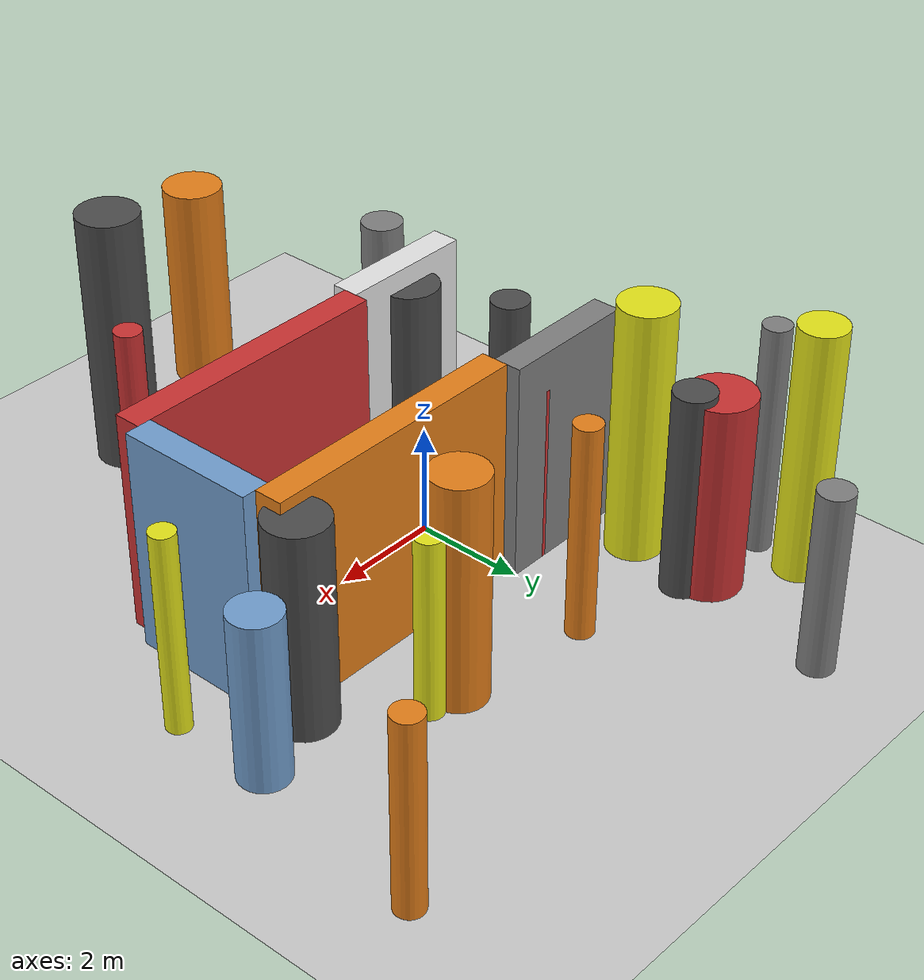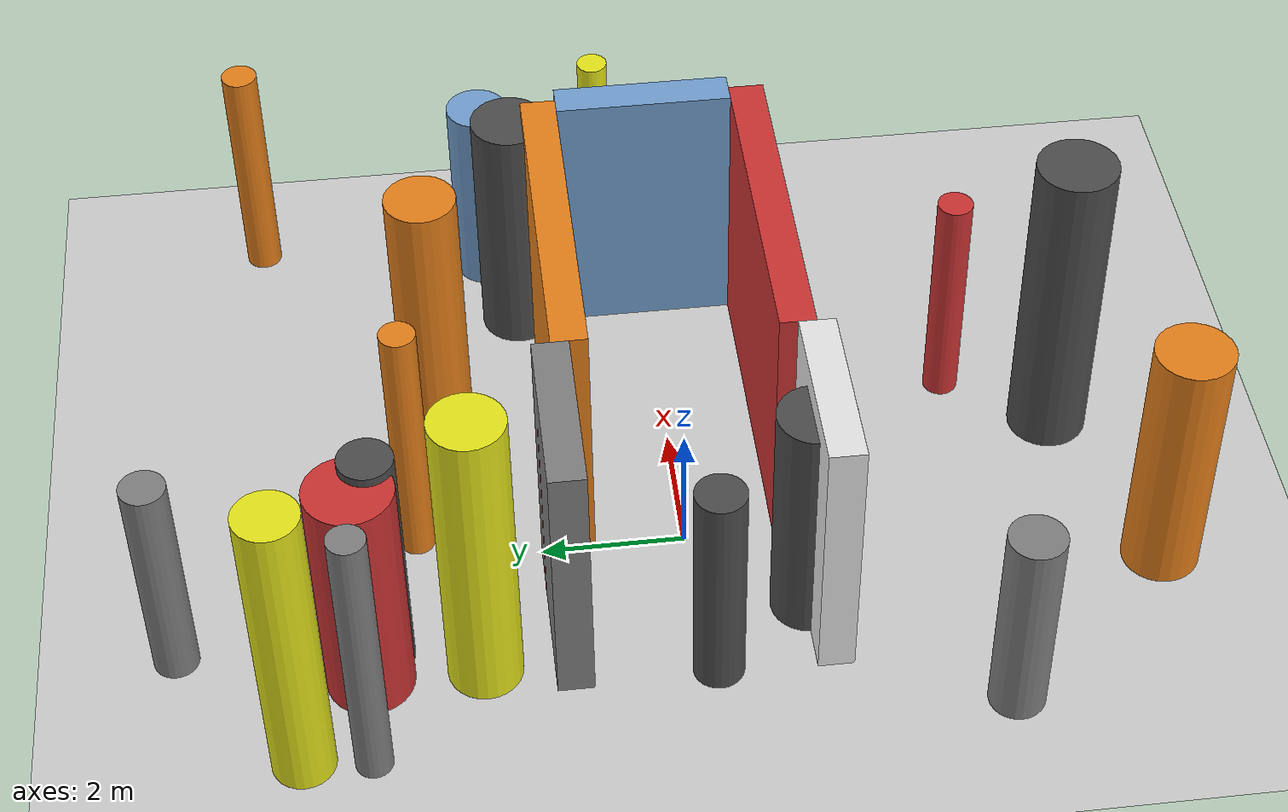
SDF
<?xml version='1.0'?>
<sdf version='1.6'>
  <world name='routeA_rl_v1__dense_recovery__rl_train__cul_de_sac_trap__000079'>
    <!-- Sun light -->
    <light name='sun' type='directional'>
      <cast_shadows>1</cast_shadows>
      <pose>0 0 10 0 0 0</pose>
      <diffuse>0.8 0.8 0.8 1</diffuse>
      <specular>0.2 0.2 0.2 1</specular>
      <attenuation>
        <range>1000</range>
        <constant>0.9</constant>
        <linear>0.01</linear>
        <quadratic>0.001</quadratic>
      </attenuation>
      <direction>-0.5 0.1 -0.9</direction>
    </light>

    <!-- Ground plane -->
    <model name='ground_plane'>
      <static>1</static>
      <link name='link'>
        <collision name='collision'>
          <geometry>
            <plane>
              <normal>0 0 1</normal>
              <size>100 100</size>
            </plane>
          </geometry>
          <surface>
            <contact>
              <collide_bitmask>65535</collide_bitmask>
              <ode/>
            </contact>
            <friction>
              <ode>
                <mu>100</mu>
                <mu2>50</mu2>
              </ode>
              <torsional><ode/></torsional>
            </friction>
            <bounce/>
          </surface>
          <max_contacts>10</max_contacts>
        </collision>
        <visual name='visual'>
          <cast_shadows>0</cast_shadows>
          <geometry>
            <plane>
              <normal>0 0 1</normal>
              <size>100 100</size>
            </plane>
          </geometry>
          <material>
            <script>
              <uri>file://media/materials/scripts/gazebo.material</uri>
              <n>Gazebo/Grey</n>
            </script>
          </material>
        </visual>
      </link>
    </model>

    <!-- Environment -->
    <magnetic_field>6e-06 2.3e-05 -4.2e-05</magnetic_field>
    <atmosphere type='adiabatic'/>
    <physics name='default_physics' default='0' type='ode'>
      <gravity>0 0 -9.8</gravity>
      <max_step_size>0.004</max_step_size>
      <real_time_factor>1</real_time_factor>
      <real_time_update_rate>250</real_time_update_rate>
    </physics>
    <scene>
      <ambient>0.4 0.4 0.4 1</ambient>
      <background>0.7 0.7 0.7 1</background>
      <shadows>1</shadows>
    </scene>
    <wind/>
    <spherical_coordinates>
      <surface_model>EARTH_WGS84</surface_model>
      <latitude_deg>0</latitude_deg>
      <longitude_deg>0</longitude_deg>
      <elevation>0</elevation>
      <heading_deg>0</heading_deg>
    </spherical_coordinates>

    <!-- ============ OBSTACLES (27) ============ -->
    <model name='trap_side_l'>
      <static>1</static>
      <link name='link'>
        <visual name='visual'>
          <geometry>
            <box>
              <size>5.0000 0.5000 4.0000</size>
            </box>
          </geometry>
          <material>
            <script>
              <n>Gazebo/Red</n>
              <uri>file://media/materials/scripts/gazebo.material</uri>
            </script>
            <ambient>0.8 0.2 0.2 1</ambient>
          </material>
        </visual>
        <collision name='collision'>
          <geometry>
            <box>
              <size>5.0000 0.5000 4.0000</size>
            </box>
          </geometry>
          <max_contacts>10</max_contacts>
          <surface>
            <contact><ode/></contact>
            <bounce/>
            <friction>
              <ode><mu>1</mu><mu2>1</mu2></ode>
              <torsional><ode/></torsional>
            </friction>
          </surface>
        </collision>
      </link>
      <pose>2.5000 -1.5000 2.0000 0 0 0.0000</pose>
    </model>

    <model name='trap_side_r'>
      <static>1</static>
      <link name='link'>
        <visual name='visual'>
          <geometry>
            <box>
              <size>5.0000 0.5000 4.0000</size>
            </box>
          </geometry>
          <material>
            <script>
              <n>Gazebo/Orange</n>
              <uri>file://media/materials/scripts/gazebo.material</uri>
            </script>
            <ambient>0.9 0.5 0.1 1</ambient>
          </material>
        </visual>
        <collision name='collision'>
          <geometry>
            <box>
              <size>5.0000 0.5000 4.0000</size>
            </box>
          </geometry>
          <max_contacts>10</max_contacts>
          <surface>
            <contact><ode/></contact>
            <bounce/>
            <friction>
              <ode><mu>1</mu><mu2>1</mu2></ode>
              <torsional><ode/></torsional>
            </friction>
          </surface>
        </collision>
      </link>
      <pose>2.5000 1.5000 2.0000 0 0 0.0000</pose>
    </model>

    <model name='trap_back'>
      <static>1</static>
      <link name='link'>
        <visual name='visual'>
          <geometry>
            <box>
              <size>0.5000 2.5000 4.0000</size>
            </box>
          </geometry>
          <material>
            <script>
              <n>Gazebo/Blue</n>
              <uri>file://media/materials/scripts/gazebo.material</uri>
            </script>
            <ambient>0.447 0.624 0.812 1</ambient>
          </material>
        </visual>
        <collision name='collision'>
          <geometry>
            <box>
              <size>0.5000 2.5000 4.0000</size>
            </box>
          </geometry>
          <max_contacts>10</max_contacts>
          <surface>
            <contact><ode/></contact>
            <bounce/>
            <friction>
              <ode><mu>1</mu><mu2>1</mu2></ode>
              <torsional><ode/></torsional>
            </friction>
          </surface>
        </collision>
      </link>
      <pose>5.0000 0.0000 2.0000 0 0 0.0000</pose>
    </model>

    <model name='trap_funnel_l'>
      <static>1</static>
      <link name='link'>
        <visual name='visual'>
          <geometry>
            <box>
              <size>2.5000 0.5000 4.0000</size>
            </box>
          </geometry>
          <material>
            <script>
              <n>Gazebo/White</n>
              <uri>file://media/materials/scripts/gazebo.material</uri>
            </script>
            <ambient>0.9 0.9 0.9 1</ambient>
          </material>
        </visual>
        <collision name='collision'>
          <geometry>
            <box>
              <size>2.5000 0.5000 4.0000</size>
            </box>
          </geometry>
          <max_contacts>10</max_contacts>
          <surface>
            <contact><ode/></contact>
            <bounce/>
            <friction>
              <ode><mu>1</mu><mu2>1</mu2></ode>
              <torsional><ode/></torsional>
            </friction>
          </surface>
        </collision>
      </link>
      <pose>-1.2500 -1.7500 2.0000 0 0 0.0000</pose>
    </model>

    <model name='trap_funnel_r'>
      <static>1</static>
      <link name='link'>
        <visual name='visual'>
          <geometry>
            <box>
              <size>2.5000 0.5000 4.0000</size>
            </box>
          </geometry>
          <material>
            <script>
              <n>Gazebo/Grey</n>
              <uri>file://media/materials/scripts/gazebo.material</uri>
            </script>
            <ambient>0.5 0.5 0.5 1</ambient>
          </material>
        </visual>
        <collision name='collision'>
          <geometry>
            <box>
              <size>2.5000 0.5000 4.0000</size>
            </box>
          </geometry>
          <max_contacts>10</max_contacts>
          <surface>
            <contact><ode/></contact>
            <bounce/>
            <friction>
              <ode><mu>1</mu><mu2>1</mu2></ode>
              <torsional><ode/></torsional>
            </friction>
          </surface>
        </collision>
      </link>
      <pose>-1.2500 1.7500 2.0000 0 0 0.0000</pose>
    </model>

    <model name='trap_scatter_0'>
      <static>1</static>
      <link name='link'>
        <visual name='visual'>
          <geometry>
            <cylinder>
              <radius>0.5016</radius>
              <length>4.1663</length>
            </cylinder>
          </geometry>
          <material>
            <script>
              <n>Gazebo/Orange</n>
              <uri>file://media/materials/scripts/gazebo.material</uri>
            </script>
            <ambient>0.9 0.5 0.1 1</ambient>
          </material>
        </visual>
        <collision name='collision'>
          <geometry>
            <cylinder>
              <radius>0.5016</radius>
              <length>4.1663</length>
            </cylinder>
          </geometry>
          <max_contacts>10</max_contacts>
          <surface>
            <contact><ode/></contact>
            <bounce/>
            <friction>
              <ode><mu>1</mu><mu2>1</mu2></ode>
              <torsional><ode/></torsional>
            </friction>
          </surface>
        </collision>
      </link>
      <pose>2.8660 3.2779 2.0832 0 0 0.0000</pose>
    </model>

    <model name='trap_scatter_1'>
      <static>1</static>
      <link name='link'>
        <visual name='visual'>
          <geometry>
            <cylinder>
              <radius>0.5091</radius>
              <length>4.7003</length>
            </cylinder>
          </geometry>
          <material>
            <script>
              <n>Gazebo/Yellow</n>
              <uri>file://media/materials/scripts/gazebo.material</uri>
            </script>
            <ambient>0.9 0.9 0.1 1</ambient>
          </material>
        </visual>
        <collision name='collision'>
          <geometry>
            <cylinder>
              <radius>0.5091</radius>
              <length>4.7003</length>
            </cylinder>
          </geometry>
          <max_contacts>10</max_contacts>
          <surface>
            <contact><ode/></contact>
            <bounce/>
            <friction>
              <ode><mu>1</mu><mu2>1</mu2></ode>
              <torsional><ode/></torsional>
            </friction>
          </surface>
        </collision>
      </link>
      <pose>-2.0177 2.9220 2.3502 0 0 0.0000</pose>
    </model>

    <model name='trap_scatter_2'>
      <static>1</static>
      <link name='link'>
        <visual name='visual'>
          <geometry>
            <cylinder>
              <radius>0.4882</radius>
              <length>3.6354</length>
            </cylinder>
          </geometry>
          <material>
            <script>
              <n>Gazebo/Blue</n>
              <uri>file://media/materials/scripts/gazebo.material</uri>
            </script>
            <ambient>0.447 0.624 0.812 1</ambient>
          </material>
        </visual>
        <collision name='collision'>
          <geometry>
            <cylinder>
              <radius>0.4882</radius>
              <length>3.6354</length>
            </cylinder>
          </geometry>
          <max_contacts>10</max_contacts>
          <surface>
            <contact><ode/></contact>
            <bounce/>
            <friction>
              <ode><mu>1</mu><mu2>1</mu2></ode>
              <torsional><ode/></torsional>
            </friction>
          </surface>
        </collision>
      </link>
      <pose>-1.9646 4.4221 1.8177 0 0 0.0000</pose>
    </model>

    <model name='trap_scatter_3'>
      <static>1</static>
      <link name='link'>
        <visual name='visual'>
          <geometry>
            <cylinder>
              <radius>0.5455</radius>
              <length>3.7944</length>
            </cylinder>
          </geometry>
          <material>
            <script>
              <n>Gazebo/DarkGrey</n>
              <uri>file://media/materials/scripts/gazebo.material</uri>
            </script>
            <ambient>0.3 0.3 0.3 1</ambient>
          </material>
        </visual>
        <collision name='collision'>
          <geometry>
            <cylinder>
              <radius>0.5455</radius>
              <length>3.7944</length>
            </cylinder>
          </geometry>
          <max_contacts>10</max_contacts>
          <surface>
            <contact><ode/></contact>
            <bounce/>
            <friction>
              <ode><mu>1</mu><mu2>1</mu2></ode>
              <torsional><ode/></torsional>
            </friction>
          </surface>
        </collision>
      </link>
      <pose>4.8741 1.9364 1.8972 0 0 0.0000</pose>
    </model>

    <model name='trap_scatter_4'>
      <static>1</static>
      <link name='link'>
        <visual name='visual'>
          <geometry>
            <cylinder>
              <radius>0.2503</radius>
              <length>3.4776</length>
            </cylinder>
          </geometry>
          <material>
            <script>
              <n>Gazebo/Red</n>
              <uri>file://media/materials/scripts/gazebo.material</uri>
            </script>
            <ambient>0.8 0.2 0.2 1</ambient>
          </material>
        </visual>
        <collision name='collision'>
          <geometry>
            <cylinder>
              <radius>0.2503</radius>
              <length>3.4776</length>
            </cylinder>
          </geometry>
          <max_contacts>10</max_contacts>
          <surface>
            <contact><ode/></contact>
            <bounce/>
            <friction>
              <ode><mu>1</mu><mu2>1</mu2></ode>
              <torsional><ode/></torsional>
            </friction>
          </surface>
        </collision>
      </link>
      <pose>2.6716 -4.1497 1.7388 0 0 0.0000</pose>
    </model>

    <model name='trap_scatter_5'>
      <static>1</static>
      <link name='link'>
        <visual name='visual'>
          <geometry>
            <cylinder>
              <radius>0.3891</radius>
              <length>3.1275</length>
            </cylinder>
          </geometry>
          <material>
            <script>
              <n>Gazebo/Grey</n>
              <uri>file://media/materials/scripts/gazebo.material</uri>
            </script>
            <ambient>0.5 0.5 0.5 1</ambient>
          </material>
        </visual>
        <collision name='collision'>
          <geometry>
            <cylinder>
              <radius>0.3891</radius>
              <length>3.1275</length>
            </cylinder>
          </geometry>
          <max_contacts>10</max_contacts>
          <surface>
            <contact><ode/></contact>
            <bounce/>
            <friction>
              <ode><mu>1</mu><mu2>1</mu2></ode>
              <torsional><ode/></torsional>
            </friction>
          </surface>
        </collision>
      </link>
      <pose>-3.3393 -4.0388 1.5637 0 0 0.0000</pose>
    </model>

    <model name='trap_scatter_6'>
      <static>1</static>
      <link name='link'>
        <visual name='visual'>
          <geometry>
            <cylinder>
              <radius>0.5669</radius>
              <length>4.7923</length>
            </cylinder>
          </geometry>
          <material>
            <script>
              <n>Gazebo/DarkGrey</n>
              <uri>file://media/materials/scripts/gazebo.material</uri>
            </script>
            <ambient>0.3 0.3 0.3 1</ambient>
          </material>
        </visual>
        <collision name='collision'>
          <geometry>
            <cylinder>
              <radius>0.5669</radius>
              <length>4.7923</length>
            </cylinder>
          </geometry>
          <max_contacts>10</max_contacts>
          <surface>
            <contact><ode/></contact>
            <bounce/>
            <friction>
              <ode><mu>1</mu><mu2>1</mu2></ode>
              <torsional><ode/></torsional>
            </friction>
          </surface>
        </collision>
      </link>
      <pose>1.7354 -5.5493 2.3962 0 0 0.0000</pose>
    </model>

    <model name='trap_scatter_8'>
      <static>1</static>
      <link name='link'>
        <visual name='visual'>
          <geometry>
            <cylinder>
              <radius>0.2628</radius>
              <length>3.2681</length>
            </cylinder>
          </geometry>
          <material>
            <script>
              <n>Gazebo/Red</n>
              <uri>file://media/materials/scripts/gazebo.material</uri>
            </script>
            <ambient>0.8 0.2 0.2 1</ambient>
          </material>
        </visual>
        <collision name='collision'>
          <geometry>
            <cylinder>
              <radius>0.2628</radius>
              <length>3.2681</length>
            </cylinder>
          </geometry>
          <max_contacts>10</max_contacts>
          <surface>
            <contact><ode/></contact>
            <bounce/>
            <friction>
              <ode><mu>1</mu><mu2>1</mu2></ode>
              <torsional><ode/></torsional>
            </friction>
          </surface>
        </collision>
      </link>
      <pose>-0.7384 1.7417 1.6340 0 0 0.0000</pose>
    </model>

    <model name='trap_scatter_9'>
      <static>1</static>
      <link name='link'>
        <visual name='visual'>
          <geometry>
            <cylinder>
              <radius>0.2516</radius>
              <length>4.2844</length>
            </cylinder>
          </geometry>
          <material>
            <script>
              <n>Gazebo/Grey</n>
              <uri>file://media/materials/scripts/gazebo.material</uri>
            </script>
            <ambient>0.5 0.5 0.5 1</ambient>
          </material>
        </visual>
        <collision name='collision'>
          <geometry>
            <cylinder>
              <radius>0.2516</radius>
              <length>4.2844</length>
            </cylinder>
          </geometry>
          <max_contacts>10</max_contacts>
          <surface>
            <contact><ode/></contact>
            <bounce/>
            <friction>
              <ode><mu>1</mu><mu2>1</mu2></ode>
              <torsional><ode/></torsional>
            </friction>
          </surface>
        </collision>
      </link>
      <pose>-3.4018 4.4646 2.1422 0 0 0.0000</pose>
    </model>

    <model name='trap_scatter_10'>
      <static>1</static>
      <link name='link'>
        <visual name='visual'>
          <geometry>
            <cylinder>
              <radius>0.3507</radius>
              <length>3.4017</length>
            </cylinder>
          </geometry>
          <material>
            <script>
              <n>Gazebo/DarkGrey</n>
              <uri>file://media/materials/scripts/gazebo.material</uri>
            </script>
            <ambient>0.3 0.3 0.3 1</ambient>
          </material>
        </visual>
        <collision name='collision'>
          <geometry>
            <cylinder>
              <radius>0.3507</radius>
              <length>3.4017</length>
            </cylinder>
          </geometry>
          <max_contacts>10</max_contacts>
          <surface>
            <contact><ode/></contact>
            <bounce/>
            <friction>
              <ode><mu>1</mu><mu2>1</mu2></ode>
              <torsional><ode/></torsional>
            </friction>
          </surface>
        </collision>
      </link>
      <pose>-2.3716 -0.1767 1.7008 0 0 0.0000</pose>
    </model>

    <model name='trap_scatter_11'>
      <static>1</static>
      <link name='link'>
        <visual name='visual'>
          <geometry>
            <cylinder>
              <radius>0.3091</radius>
              <length>3.3633</length>
            </cylinder>
          </geometry>
          <material>
            <script>
              <n>Gazebo/Grey</n>
              <uri>file://media/materials/scripts/gazebo.material</uri>
            </script>
            <ambient>0.5 0.5 0.5 1</ambient>
          </material>
        </visual>
        <collision name='collision'>
          <geometry>
            <cylinder>
              <radius>0.3091</radius>
              <length>3.3633</length>
            </cylinder>
          </geometry>
          <max_contacts>10</max_contacts>
          <surface>
            <contact><ode/></contact>
            <bounce/>
            <friction>
              <ode><mu>1</mu><mu2>1</mu2></ode>
              <torsional><ode/></torsional>
            </friction>
          </surface>
        </collision>
      </link>
      <pose>-1.3508 7.0346 1.6816 0 0 0.0000</pose>
    </model>

    <model name='trap_scatter_12'>
      <static>1</static>
      <link name='link'>
        <visual name='visual'>
          <geometry>
            <cylinder>
              <radius>0.4442</radius>
              <length>3.0664</length>
            </cylinder>
          </geometry>
          <material>
            <script>
              <n>Gazebo/Blue</n>
              <uri>file://media/materials/scripts/gazebo.material</uri>
            </script>
            <ambient>0.447 0.624 0.812 1</ambient>
          </material>
        </visual>
        <collision name='collision'>
          <geometry>
            <cylinder>
              <radius>0.4442</radius>
              <length>3.0664</length>
            </cylinder>
          </geometry>
          <max_contacts>10</max_contacts>
          <surface>
            <contact><ode/></contact>
            <bounce/>
            <friction>
              <ode><mu>1</mu><mu2>1</mu2></ode>
              <torsional><ode/></torsional>
            </friction>
          </surface>
        </collision>
      </link>
      <pose>6.1508 2.3482 1.5332 0 0 0.0000</pose>
    </model>

    <model name='trap_scatter_13'>
      <static>1</static>
      <link name='link'>
        <visual name='visual'>
          <geometry>
            <cylinder>
              <radius>0.3692</radius>
              <length>3.7924</length>
            </cylinder>
          </geometry>
          <material>
            <script>
              <n>Gazebo/DarkGrey</n>
              <uri>file://media/materials/scripts/gazebo.material</uri>
            </script>
            <ambient>0.3 0.3 0.3 1</ambient>
          </material>
        </visual>
        <collision name='collision'>
          <geometry>
            <cylinder>
              <radius>0.3692</radius>
              <length>3.7924</length>
            </cylinder>
          </geometry>
          <max_contacts>10</max_contacts>
          <surface>
            <contact><ode/></contact>
            <bounce/>
            <friction>
              <ode><mu>1</mu><mu2>1</mu2></ode>
              <torsional><ode/></torsional>
            </friction>
          </surface>
        </collision>
      </link>
      <pose>-1.6085 4.2137 1.8962 0 0 0.0000</pose>
    </model>

    <model name='trap_scatter_14'>
      <static>1</static>
      <link name='link'>
        <visual name='visual'>
          <geometry>
            <cylinder>
              <radius>0.2564</radius>
              <length>3.5316</length>
            </cylinder>
          </geometry>
          <material>
            <script>
              <n>Gazebo/Orange</n>
              <uri>file://media/materials/scripts/gazebo.material</uri>
            </script>
            <ambient>0.9 0.5 0.1 1</ambient>
          </material>
        </visual>
        <collision name='collision'>
          <geometry>
            <cylinder>
              <radius>0.2564</radius>
              <length>3.5316</length>
            </cylinder>
          </geometry>
          <max_contacts>10</max_contacts>
          <surface>
            <contact><ode/></contact>
            <bounce/>
            <friction>
              <ode><mu>1</mu><mu2>1</mu2></ode>
              <torsional><ode/></torsional>
            </friction>
          </surface>
        </collision>
      </link>
      <pose>6.7351 5.7780 1.7658 0 0 0.0000</pose>
    </model>

    <model name='trap_scatter_15'>
      <static>1</static>
      <link name='link'>
        <visual name='visual'>
          <geometry>
            <cylinder>
              <radius>0.5435</radius>
              <length>3.8707</length>
            </cylinder>
          </geometry>
          <material>
            <script>
              <n>Gazebo/Orange</n>
              <uri>file://media/materials/scripts/gazebo.material</uri>
            </script>
            <ambient>0.9 0.5 0.1 1</ambient>
          </material>
        </visual>
        <collision name='collision'>
          <geometry>
            <cylinder>
              <radius>0.5435</radius>
              <length>3.8707</length>
            </cylinder>
          </geometry>
          <max_contacts>10</max_contacts>
          <surface>
            <contact><ode/></contact>
            <bounce/>
            <friction>
              <ode><mu>1</mu><mu2>1</mu2></ode>
              <torsional><ode/></torsional>
            </friction>
          </surface>
        </collision>
      </link>
      <pose>-1.0576 -6.5533 1.9353 0 0 0.0000</pose>
    </model>

    <model name='trap_scatter_16'>
      <static>1</static>
      <link name='link'>
        <visual name='visual'>
          <geometry>
            <cylinder>
              <radius>0.2103</radius>
              <length>3.3062</length>
            </cylinder>
          </geometry>
          <material>
            <script>
              <n>Gazebo/DarkGrey</n>
              <uri>file://media/materials/scripts/gazebo.material</uri>
            </script>
            <ambient>0.3 0.3 0.3 1</ambient>
          </material>
        </visual>
        <collision name='collision'>
          <geometry>
            <cylinder>
              <radius>0.2103</radius>
              <length>3.3062</length>
            </cylinder>
          </geometry>
          <max_contacts>10</max_contacts>
          <surface>
            <contact><ode/></contact>
            <bounce/>
            <friction>
              <ode><mu>1</mu><mu2>1</mu2></ode>
              <torsional><ode/></torsional>
            </friction>
          </surface>
        </collision>
      </link>
      <pose>6.7028 5.7800 1.6531 0 0 0.0000</pose>
    </model>

    <model name='trap_scatter_17'>
      <static>1</static>
      <link name='link'>
        <visual name='visual'>
          <geometry>
            <cylinder>
              <radius>0.2451</radius>
              <length>3.3277</length>
            </cylinder>
          </geometry>
          <material>
            <script>
              <n>Gazebo/Yellow</n>
              <uri>file://media/materials/scripts/gazebo.material</uri>
            </script>
            <ambient>0.9 0.9 0.1 1</ambient>
          </material>
        </visual>
        <collision name='collision'>
          <geometry>
            <cylinder>
              <radius>0.2451</radius>
              <length>3.3277</length>
            </cylinder>
          </geometry>
          <max_contacts>10</max_contacts>
          <surface>
            <contact><ode/></contact>
            <bounce/>
            <friction>
              <ode><mu>1</mu><mu2>1</mu2></ode>
              <torsional><ode/></torsional>
            </friction>
          </surface>
        </collision>
      </link>
      <pose>3.4771 3.2301 1.6639 0 0 0.0000</pose>
    </model>

    <model name='trap_scatter_18'>
      <static>1</static>
      <link name='link'>
        <visual name='visual'>
          <geometry>
            <cylinder>
              <radius>0.4274</radius>
              <length>4.6938</length>
            </cylinder>
          </geometry>
          <material>
            <script>
              <n>Gazebo/Yellow</n>
              <uri>file://media/materials/scripts/gazebo.material</uri>
            </script>
            <ambient>0.9 0.9 0.1 1</ambient>
          </material>
        </visual>
        <collision name='collision'>
          <geometry>
            <cylinder>
              <radius>0.4274</radius>
              <length>4.6938</length>
            </cylinder>
          </geometry>
          <max_contacts>10</max_contacts>
          <surface>
            <contact><ode/></contact>
            <bounce/>
            <friction>
              <ode><mu>1</mu><mu2>1</mu2></ode>
              <torsional><ode/></torsional>
            </friction>
          </surface>
        </collision>
      </link>
      <pose>-3.2893 5.3688 2.3469 0 0 0.0000</pose>
    </model>

    <model name='trap_scatter_19'>
      <static>1</static>
      <link name='link'>
        <visual name='visual'>
          <geometry>
            <cylinder>
              <radius>0.2188</radius>
              <length>3.6567</length>
            </cylinder>
          </geometry>
          <material>
            <script>
              <n>Gazebo/Yellow</n>
              <uri>file://media/materials/scripts/gazebo.material</uri>
            </script>
            <ambient>0.9 0.9 0.1 1</ambient>
          </material>
        </visual>
        <collision name='collision'>
          <geometry>
            <cylinder>
              <radius>0.2188</radius>
              <length>3.6567</length>
            </cylinder>
          </geometry>
          <max_contacts>10</max_contacts>
          <surface>
            <contact><ode/></contact>
            <bounce/>
            <friction>
              <ode><mu>1</mu><mu2>1</mu2></ode>
              <torsional><ode/></torsional>
            </friction>
          </surface>
        </collision>
      </link>
      <pose>6.2557 0.6091 1.8283 0 0 0.0000</pose>
    </model>

    <model name='trap_scatter_20'>
      <static>1</static>
      <link name='link'>
        <visual name='visual'>
          <geometry>
            <cylinder>
              <radius>0.5940</radius>
              <length>3.6642</length>
            </cylinder>
          </geometry>
          <material>
            <script>
              <n>Gazebo/Red</n>
              <uri>file://media/materials/scripts/gazebo.material</uri>
            </script>
            <ambient>0.8 0.2 0.2 1</ambient>
          </material>
        </visual>
        <collision name='collision'>
          <geometry>
            <cylinder>
              <radius>0.5940</radius>
              <length>3.6642</length>
            </cylinder>
          </geometry>
          <max_contacts>10</max_contacts>
          <surface>
            <contact><ode/></contact>
            <bounce/>
            <friction>
              <ode><mu>1</mu><mu2>1</mu2></ode>
              <torsional><ode/></torsional>
            </friction>
          </surface>
        </collision>
      </link>
      <pose>-2.0072 4.4520 1.8321 0 0 0.0000</pose>
    </model>

    <model name='trap_scatter_23'>
      <static>1</static>
      <link name='link'>
        <visual name='visual'>
          <geometry>
            <cylinder>
              <radius>0.5354</radius>
              <length>3.6220</length>
            </cylinder>
          </geometry>
          <material>
            <script>
              <n>Gazebo/DarkGrey</n>
              <uri>file://media/materials/scripts/gazebo.material</uri>
            </script>
            <ambient>0.3 0.3 0.3 1</ambient>
          </material>
        </visual>
        <collision name='collision'>
          <geometry>
            <cylinder>
              <radius>0.5354</radius>
              <length>3.6220</length>
            </cylinder>
          </geometry>
          <max_contacts>10</max_contacts>
          <surface>
            <contact><ode/></contact>
            <bounce/>
            <friction>
              <ode><mu>1</mu><mu2>1</mu2></ode>
              <torsional><ode/></torsional>
            </friction>
          </surface>
        </collision>
      </link>
      <pose>-1.3518 -1.5518 1.8110 0 0 0.0000</pose>
    </model>

    <model name='trap_scatter_24'>
      <static>1</static>
      <link name='link'>
        <visual name='visual'>
          <geometry>
            <cylinder>
              <radius>0.2484</radius>
              <length>3.9752</length>
            </cylinder>
          </geometry>
          <material>
            <script>
              <n>Gazebo/Orange</n>
              <uri>file://media/materials/scripts/gazebo.material</uri>
            </script>
            <ambient>0.9 0.5 0.1 1</ambient>
          </material>
        </visual>
        <collision name='collision'>
          <geometry>
            <cylinder>
              <radius>0.2484</radius>
              <length>3.9752</length>
            </cylinder>
          </geometry>
          <max_contacts>10</max_contacts>
          <surface>
            <contact><ode/></contact>
            <bounce/>
            <friction>
              <ode><mu>1</mu><mu2>1</mu2></ode>
              <torsional><ode/></torsional>
            </friction>
          </surface>
        </collision>
      </link>
      <pose>0.4217 3.7111 1.9876 0 0 0.0000</pose>
    </model>

    <!-- GUI camera -->
    <gui fullscreen='0'>
      <camera name='user_camera'>
        <pose>-15 0 18 0 0.85 0.15</pose>
        <view_controller>orbit</view_controller>
        <projection_type>perspective</projection_type>
      </camera>
    </gui>
  </world>
</sdf>
